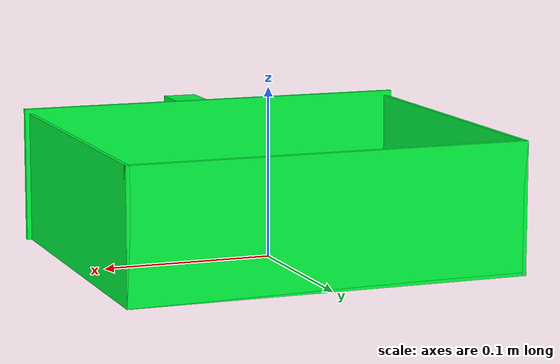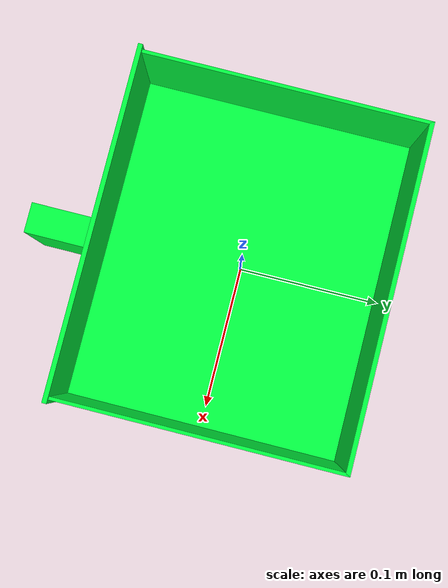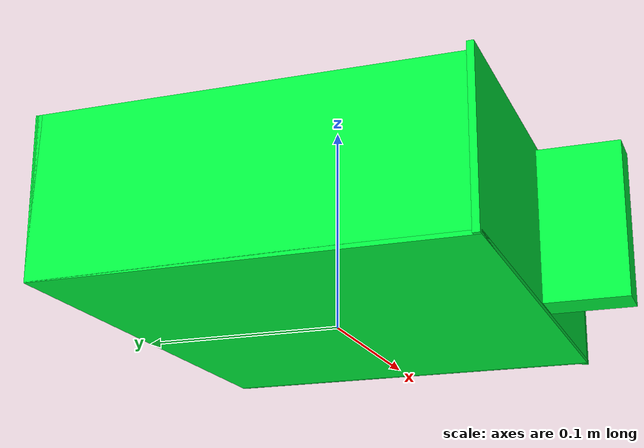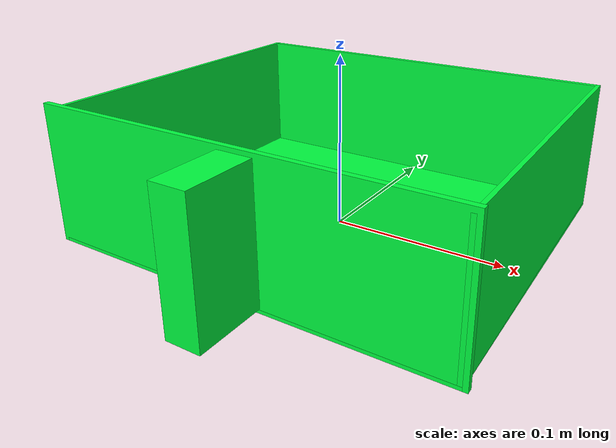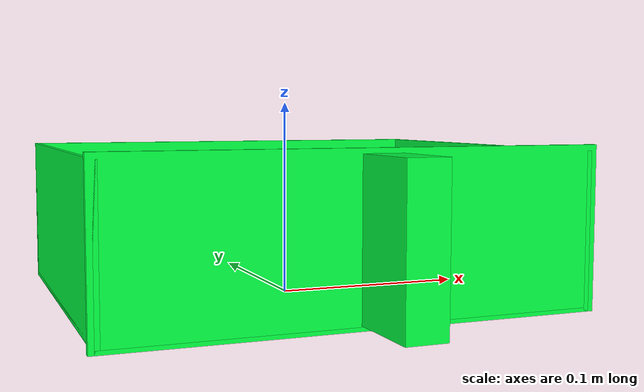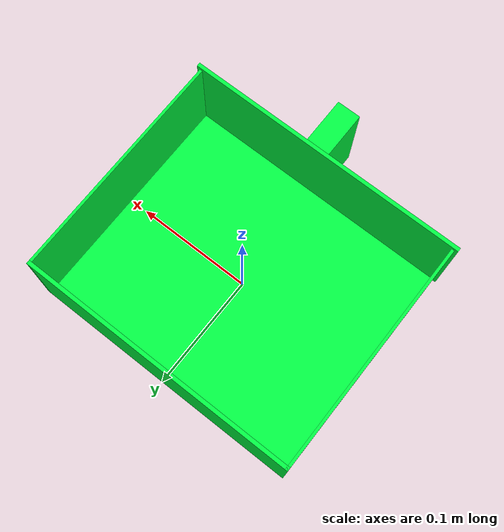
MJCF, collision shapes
<mujoco model="container">
  <compiler meshdir="." angle="radian" autolimits="true"/>
  <default>
    <!-- The meshes provide appearance and mass; boxes preserve the hollow interior for contact. -->
    <geom density="600" friction="0.5 0.02 0.001" solref="0.005 1"
          contype="0" conaffinity="0"/>
    <default class="collision">
      <geom type="box" mass="0" group="3" rgba="0 1 0.25 0.35"
            contype="1" conaffinity="1"/>
    </default>
  </default>

  <asset>
    <mesh name="tray_body" file="tray_body.stl"
          scale="0.001 0.001 0.001" inertia="exact"/>
    <mesh name="tray_handle" file="tray_handle.stl"
          scale="0.001 0.001 0.001" inertia="exact"/>
    <material name="container" rgba="0.42 0.45 0.28 1"/>
  </asset>

  <worldbody>
    <!-- Root origin is the footprint center on the table surface. -->
    <body name="root">
      <geom type="mesh" mesh="tray_body" material="container"
            pos="-0.120 -0.100 0"/>
      <geom type="mesh" mesh="tray_handle" material="container"
            pos="-0.12 -0.1 -0.088" euler="1.5708 0 0"/>

      <geom name="floor" class="collision"
            pos="0 0 0.001" size="0.1174 0.100 0.001"/>
      <geom name="wall_left" class="collision"
            pos="-0.11625 0 0.03856" size="0.00115 0.100 0.03856"/>
      <geom name="wall_right" class="collision"
            pos="0.11625 0 0.03856" size="0.00115 0.100 0.03856"/>
      <geom name="wall_front" class="collision"
            pos="0 -0.0984 0.03995" size="0.120 0.0016 0.03995"/>
      <geom name="wall_back" class="collision"
            pos="0 0.0984 0.03856" size="0.1174 0.0016 0.03856"/>
      <geom name="handle" class="collision"
            pos="0.008 -0.120 0.040" size="0.010 0.0375 0.020"
            euler="1.5708 0 0" friction="1.2 0.05 0.005"/>
    </body>
  </worldbody>
</mujoco>
